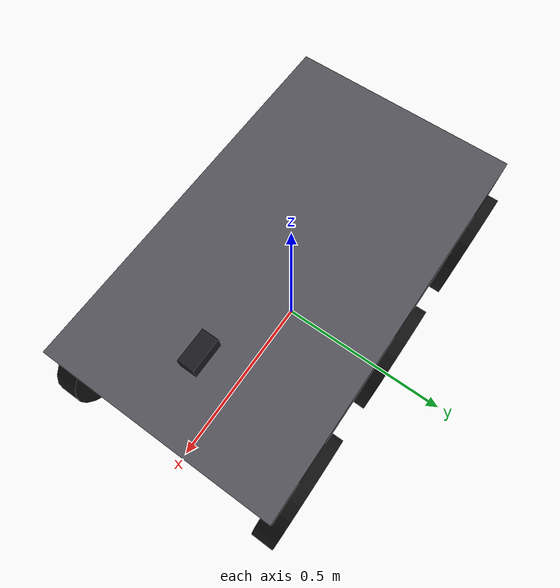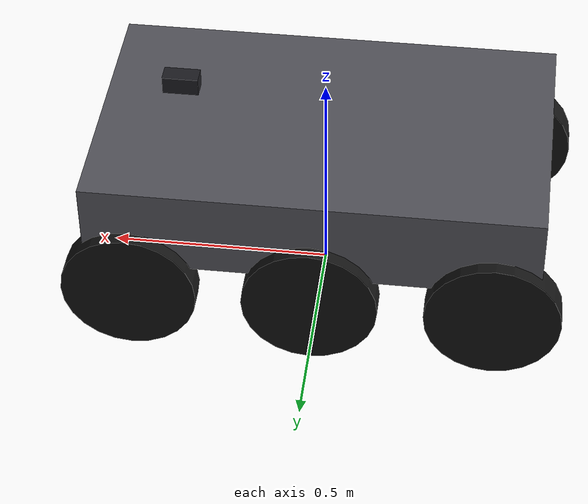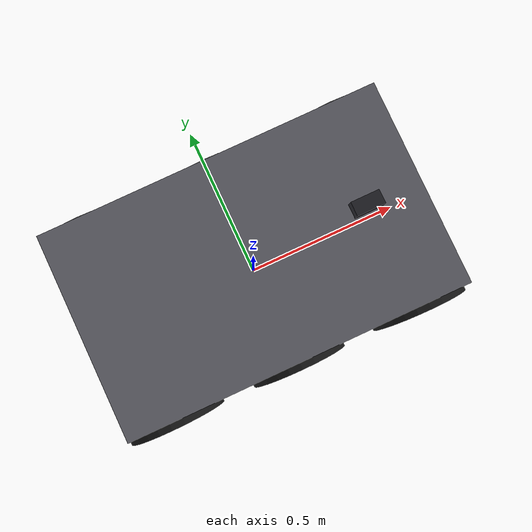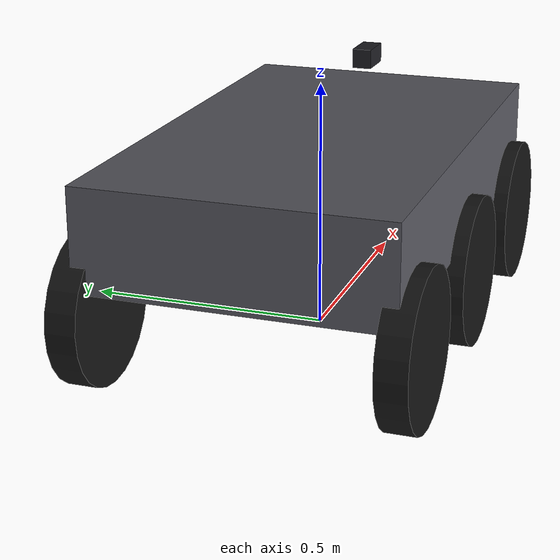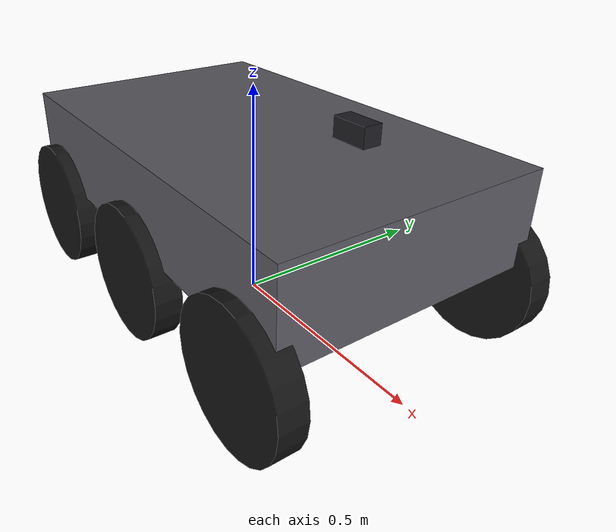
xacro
<?xml version="1.0"?>
<robot xmlns:xacro="http://www.ros.org/wiki/xacro" name="six_ws_robot">
  <xacro:arg name="controllers_file" default=""/>

  <xacro:property name="base_length" value="1.00"/>
  <xacro:property name="base_width" value="0.60"/>
  <xacro:property name="base_height" value="0.20"/>
  <xacro:property name="base_mass" value="25.0"/>

  <xacro:property name="wheel_radius" value="0.15"/>
  <xacro:property name="wheel_width" value="0.06"/>
  <xacro:property name="wheel_mass" value="1.0"/>
  <!-- Drop axle below body so wheels are clearly outside the chassis in RViz/Gazebo -->
  <xacro:property name="wheel_axle_drop" value="0.06"/>
  <xacro:property name="wheel_z_offset" value="${-(base_height * 0.5 + wheel_axle_drop)}"/>

  <!-- Steering servo properties -->
  <xacro:property name="steer_max_angle" value="0.5236"/>
  <!-- ~30 degrees in radians -->
  <xacro:property name="steer_link_length" value="0.05"/>
  <xacro:property name="steer_link_radius" value="0.02"/>
  <xacro:property name="steer_mass" value="0.3"/>

  <xacro:property name="camera_offset_x" value="0.32"/>
  <xacro:property name="camera_offset_z" value="0.18"/>
  <xacro:property name="imu_offset_z" value="0.14"/>

  <link name="base_footprint"/>

  <joint name="base_footprint_joint" type="fixed">
    <parent link="base_footprint"/>
    <child link="base_link"/>
    <origin xyz="0 0 ${wheel_radius + base_height * 0.5 + wheel_axle_drop}" rpy="0 0 0"/>
  </joint>

  <link name="base_link">
    <visual>
      <geometry>
        <box size="${base_length} ${base_width} ${base_height}"/>
      </geometry>
      <material name="body_gray">
        <color rgba="0.35 0.35 0.38 1.0"/>
      </material>
    </visual>
    <collision>
      <geometry>
        <box size="${base_length} ${base_width} ${base_height}"/>
      </geometry>
    </collision>
    <inertial>
      <origin xyz="0 0 0" rpy="0 0 0"/>
      <mass value="${base_mass}"/>
      <inertia ixx="1.0" ixy="0.0" ixz="0.0" iyy="1.8" iyz="0.0" izz="2.0"/>
    </inertial>
  </link>

  <!--  MACRO: Steering wheel module (4 corner wheels)       -->
  <!--  Adds a revolute steering joint (servo) + wheel       -->
  <xacro:macro name="steering_wheel_module" params="name x y">

    <!-- Steering knuckle link (servo housing) -->
    <link name="${name}_steer_link">
      <visual>
        <origin xyz="0 0 0" rpy="0 0 0"/>
        <geometry>
          <cylinder radius="${steer_link_radius}" length="${steer_link_length}"/>
        </geometry>
        <material name="steer_orange">
          <color rgba="0.95 0.55 0.10 1.0"/>
        </material>
      </visual>
      <collision>
        <origin xyz="0 0 0" rpy="0 0 0"/>
        <geometry>
          <cylinder radius="${steer_link_radius}" length="${steer_link_length}"/>
        </geometry>
      </collision>
      <inertial>
        <origin xyz="0 0 0" rpy="0 0 0"/>
        <mass value="${steer_mass}"/>
        <inertia ixx="0.001" ixy="0.0" ixz="0.0" iyy="0.001" iyz="0.0" izz="0.001"/>
      </inertial>
    </link>

    <!-- Steering joint: revolute around Z-axis (yaw) -->
    <joint name="${name}_steer_joint" type="revolute">
      <parent link="base_link"/>
      <child link="${name}_steer_link"/>
      <origin xyz="${x} ${y} ${wheel_z_offset}" rpy="0 0 0"/>
      <axis xyz="0 0 1"/>
      <limit lower="${-steer_max_angle}" upper="${steer_max_angle}" effort="10.0" velocity="1.0"/>
      <dynamics damping="0.5" friction="0.2"/>
    </joint>

    <!-- Wheel link -->
    <link name="${name}_wheel_link">
      <visual>
        <origin xyz="0 0 0" rpy="1.5708 0 0"/>
        <geometry>
          <cylinder radius="${wheel_radius}" length="${wheel_width}"/>
        </geometry>
        <material name="wheel_black">
          <color rgba="0.08 0.08 0.08 1.0"/>
        </material>
      </visual>
      <collision>
        <origin xyz="0 0 0" rpy="1.5708 0 0"/>
        <geometry>
          <cylinder radius="${wheel_radius}" length="${wheel_width}"/>
        </geometry>
      </collision>
      <inertial>
        <origin xyz="0 0 0" rpy="0 0 0"/>
        <mass value="${wheel_mass}"/>
        <inertia ixx="0.01" ixy="0.0" ixz="0.0" iyy="0.01" iyz="0.0" izz="0.01"/>
      </inertial>
    </link>

    <!-- Drive joint: continuous rotation (velocity controlled) -->
    <!-- Parent is steer_link so wheel turns WITH the servo -->
    <joint name="${name}_wheel_joint" type="continuous">
      <parent link="${name}_steer_link"/>
      <child link="${name}_wheel_link"/>
      <origin xyz="0 0 0" rpy="0 0 0"/>
      <axis xyz="0 1 0"/>
      <limit effort="60" velocity="35"/>
      <dynamics damping="0.2" friction="0.1"/>
    </joint>

    <gazebo reference="${name}_wheel_link">
      <mu1>1.4</mu1>
      <mu2>1.2</mu2>
      <kp>1000000.0</kp>
      <kd>10.0</kd>
      <min_depth>0.001</min_depth>
    </gazebo>
  </xacro:macro>

  <!--  MACRO: Fixed wheel module (2 middle wheels, no servo)-->
  <xacro:macro name="wheel_module" params="name x y">
    <link name="${name}_wheel_link">
      <visual>
        <origin xyz="0 0 0" rpy="1.5708 0 0"/>
        <geometry>
          <cylinder radius="${wheel_radius}" length="${wheel_width}"/>
        </geometry>
        <material name="wheel_black">
          <color rgba="0.08 0.08 0.08 1.0"/>
        </material>
      </visual>
      <collision>
        <origin xyz="0 0 0" rpy="1.5708 0 0"/>
        <geometry>
          <cylinder radius="${wheel_radius}" length="${wheel_width}"/>
        </geometry>
      </collision>
      <inertial>
        <origin xyz="0 0 0" rpy="0 0 0"/>
        <mass value="${wheel_mass}"/>
        <inertia ixx="0.01" ixy="0.0" ixz="0.0" iyy="0.01" iyz="0.0" izz="0.01"/>
      </inertial>
    </link>

    <joint name="${name}_wheel_joint" type="continuous">
      <parent link="base_link"/>
      <child link="${name}_wheel_link"/>
      <origin xyz="${x} ${y} ${wheel_z_offset}" rpy="0 0 0"/>
      <axis xyz="0 1 0"/>
      <limit effort="60" velocity="35"/>
      <dynamics damping="0.2" friction="0.1"/>
    </joint>

    <gazebo reference="${name}_wheel_link">
      <mu1>1.4</mu1>
      <mu2>1.2</mu2>
      <kp>1000000.0</kp>
      <kd>10.0</kd>
      <min_depth>0.001</min_depth>
    </gazebo>
  </xacro:macro>

  <!--  Instantiate wheels                                   -->
  <!--  4 corner wheels  → steering_wheel_module (servo)    -->
  <!--  2 middle wheels  → wheel_module (no servo)          -->
  <xacro:steering_wheel_module name="lf" x="0.40" y="0.30"/>
  <xacro:steering_wheel_module name="lr" x="-0.40" y="0.30"/>
  <xacro:steering_wheel_module name="rf" x="0.40" y="-0.30"/>
  <xacro:steering_wheel_module name="rr" x="-0.40" y="-0.30"/>

  <xacro:wheel_module name="lm" x="0.00" y="0.30"/>
  <xacro:wheel_module name="rm" x="0.00" y="-0.30"/>

  <!--  Camera                                               -->
  <link name="camera_link">
    <visual>
      <geometry>
        <box size="0.08 0.04 0.04"/>
      </geometry>
      <material name="sensor_dark">
        <color rgba="0.12 0.12 0.14 1.0"/>
      </material>
    </visual>
    <collision>
      <geometry>
        <box size="0.08 0.04 0.04"/>
      </geometry>
    </collision>
    <inertial>
      <origin xyz="0 0 0" rpy="0 0 0"/>
      <mass value="0.15"/>
      <inertia ixx="0.001" ixy="0.0" ixz="0.0" iyy="0.001" iyz="0.0" izz="0.001"/>
    </inertial>
  </link>

  <joint name="camera_joint" type="fixed">
    <parent link="base_link"/>
    <child link="camera_link"/>
    <origin xyz="${camera_offset_x} 0 ${camera_offset_z}" rpy="0 0 0"/>
  </joint>

  <!-- Optical frame: Z forward, X right, Y down (camera convention) -->
  <link name="camera_optical_link"/>
  <joint name="camera_optical_joint" type="fixed">
    <parent link="camera_link"/>
    <child link="camera_optical_link"/>
    <origin xyz="0 0 0" rpy="${-pi/2} 0 ${-pi/2}"/>
  </joint>

  <gazebo reference="camera_link">
    <sensor name="rgb_camera" type="camera">
      <always_on>true</always_on>
      <update_rate>15</update_rate>
      <visualize>true</visualize>
      <topic>camera/rgb/image_raw</topic>
      <camera name="rgb">
        <horizontal_fov>1.047</horizontal_fov>
        <image>
          <width>640</width>
          <height>480</height>
          <format>R8G8B8</format>
        </image>
        <clip>
          <near>0.05</near>
          <far>50.0</far>
        </clip>
        <optical_frame_id>camera_optical_link</optical_frame_id>
      </camera>
    </sensor>

    <sensor name="depth_camera" type="depth_camera">
      <always_on>true</always_on>
      <update_rate>15</update_rate>
      <visualize>true</visualize>
      <topic>camera/depth/image_raw</topic>
      <camera name="depth">
        <horizontal_fov>1.047</horizontal_fov>
        <image>
          <width>640</width>
          <height>480</height>
        </image>
        <clip>
          <near>0.05</near>
          <far>20.0</far>
        </clip>
        <optical_frame_id>camera_optical_link</optical_frame_id>
      </camera>
    </sensor>
  </gazebo>

  <!--  ros2_control                                         -->
  <ros2_control name="GazeboSimSystem" type="system">
    <hardware>
      <plugin>gz_ros2_control/GazeboSimSystem</plugin>
    </hardware>

    <!-- ── Steering joints (4 servo, position interface) ── -->
    <joint name="lf_steer_joint">
      <command_interface name="position">
        <param name="min">${-steer_max_angle}</param>
        <param name="max">${steer_max_angle}</param>
      </command_interface>
      <state_interface name="position"/>
      <state_interface name="velocity"/>
      <state_interface name="effort"/>
    </joint>
    <joint name="lr_steer_joint">
      <command_interface name="position">
        <param name="min">${-steer_max_angle}</param>
        <param name="max">${steer_max_angle}</param>
      </command_interface>
      <state_interface name="position"/>
      <state_interface name="velocity"/>
      <state_interface name="effort"/>
    </joint>
    <joint name="rf_steer_joint">
      <command_interface name="position">
        <param name="min">${-steer_max_angle}</param>
        <param name="max">${steer_max_angle}</param>
      </command_interface>
      <state_interface name="position"/>
      <state_interface name="velocity"/>
      <state_interface name="effort"/>
    </joint>
    <joint name="rr_steer_joint">
      <command_interface name="position">
        <param name="min">${-steer_max_angle}</param>
        <param name="max">${steer_max_angle}</param>
      </command_interface>
      <state_interface name="position"/>
      <state_interface name="velocity"/>
      <state_interface name="effort"/>
    </joint>

    <!-- ── Drive joints (6 wheels, velocity interface) ── -->
    <joint name="lf_wheel_joint">
      <command_interface name="velocity"/>
      <state_interface name="position"/>
      <state_interface name="velocity"/>
      <state_interface name="effort"/>
    </joint>
    <joint name="lm_wheel_joint">
      <command_interface name="velocity"/>
      <state_interface name="position"/>
      <state_interface name="velocity"/>
      <state_interface name="effort"/>
    </joint>
    <joint name="lr_wheel_joint">
      <command_interface name="velocity"/>
      <state_interface name="position"/>
      <state_interface name="velocity"/>
      <state_interface name="effort"/>
    </joint>
    <joint name="rf_wheel_joint">
      <command_interface name="velocity"/>
      <state_interface name="position"/>
      <state_interface name="velocity"/>
      <state_interface name="effort"/>
    </joint>
    <joint name="rm_wheel_joint">
      <command_interface name="velocity"/>
      <state_interface name="position"/>
      <state_interface name="velocity"/>
      <state_interface name="effort"/>
    </joint>
    <joint name="rr_wheel_joint">
      <command_interface name="velocity"/>
      <state_interface name="position"/>
      <state_interface name="velocity"/>
      <state_interface name="effort"/>
    </joint>
  </ros2_control>

  <gazebo>
    <plugin filename="gz_ros2_control-system" name="gz_ros2_control::GazeboSimROS2ControlPlugin">
      <parameters>$(arg controllers_file)</parameters>
    </plugin>
  </gazebo>
</robot>
